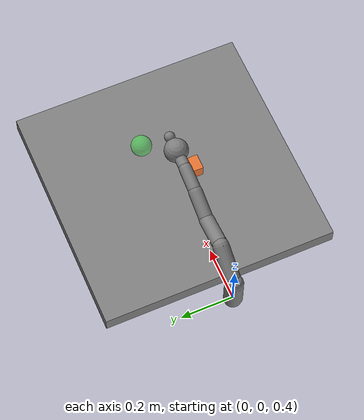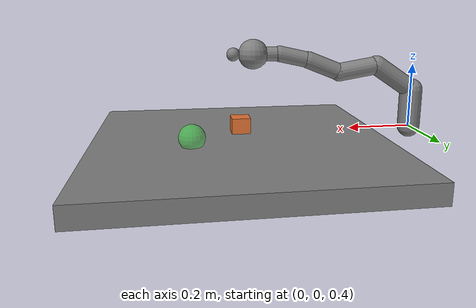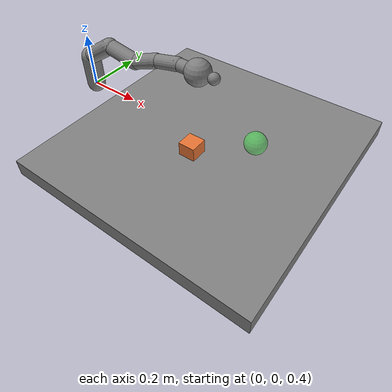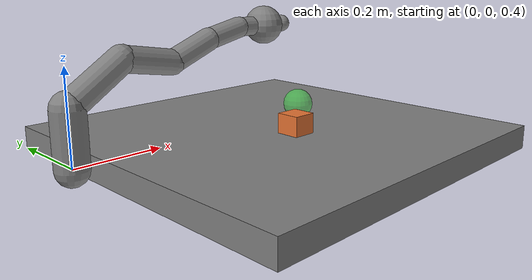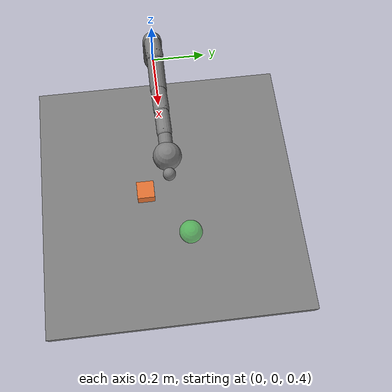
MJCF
<mujoco model="physlab_franka_push">
  <compiler angle="radian"/>
  <option timestep="0.01" integrator="RK4" gravity="0 0 -9.81"/>
  <default>
    <joint damping="0.08" armature="0.01"/>
    <geom friction="0.9 0.12 0.12"/>
  </default>
  <worldbody>
    <light pos="0 0 2"/>
    <geom name="table" type="box" pos="0.55 0 0.35" size="0.45 0.45 0.03"/>
    <body name="panda_link0" pos="0 0 0.40">
      <joint name="panda_joint1" type="hinge" axis="0 0 1" range="-2.9 2.9" limited="true"/>
      <geom type="capsule" fromto="0 0 0 0 0 0.12" size="0.035" mass="0.7"/>
      <body name="panda_link1" pos="0 0 0.12">
        <joint name="panda_joint2" type="hinge" axis="0 1 0" range="-1.8 1.8" limited="true"/>
        <geom type="capsule" fromto="0 0 0 0.12 0 0.08" size="0.03" mass="0.6"/>
        <body name="panda_link2" pos="0.12 0 0.08">
          <joint name="panda_joint3" type="hinge" axis="0 1 0" range="-2.8 2.8" limited="true"/>
          <geom type="capsule" fromto="0 0 0 0.12 0 -0.02" size="0.028" mass="0.5"/>
          <body name="panda_link3" pos="0.12 0 -0.02">
            <joint name="panda_joint4" type="hinge" axis="1 0 0" range="-2.9 0.0" limited="true"/>
            <geom type="capsule" fromto="0 0 0 0.10 0 0.04" size="0.026" mass="0.4"/>
            <body name="panda_link4" pos="0.10 0 0.04">
              <joint name="panda_joint5" type="hinge" axis="0 1 0" range="-2.9 2.9" limited="true"/>
              <geom type="capsule" fromto="0 0 0 0.09 0 0.02" size="0.024" mass="0.3"/>
              <body name="panda_link5" pos="0.09 0 0.02">
                <joint name="panda_joint6" type="hinge" axis="1 0 0" range="-0.1 3.7" limited="true"/>
                <geom type="capsule" fromto="0 0 0 0.08 0 0" size="0.022" mass="0.2"/>
                <body name="panda_hand" pos="0.08 0 0">
                  <joint name="panda_joint7" type="hinge" axis="0 1 0" range="-2.9 2.9" limited="true"/>
                  <geom name="hand_geom" type="sphere" size="0.045" mass="0.2"/>
                  <site name="gripper_site" pos="0.06 0 0" size="0.02"/>
                </body>
              </body>
            </body>
          </body>
        </body>
      </body>
    </body>
    <body name="cube" pos="0.54 -0.08 0.405">
      <freejoint name="cube_free"/>
      <geom name="cube_geom" type="box" size="0.03 0.03 0.025" mass="0.08" rgba="0.9 0.45 0.2 1"/>
    </body>
    <body name="target_mocap" mocap="true" pos="0.70 0.06 0.405">
      <site name="target_site" type="sphere" size="0.04" rgba="0.2 1 0.25 0.45"/>
    </body>
  </worldbody>
  <actuator>
    <motor name="act1" joint="panda_joint1" ctrllimited="true" ctrlrange="-1 1" gear="12"/>
    <motor name="act2" joint="panda_joint2" ctrllimited="true" ctrlrange="-1 1" gear="12"/>
    <motor name="act3" joint="panda_joint3" ctrllimited="true" ctrlrange="-1 1" gear="12"/>
    <motor name="act4" joint="panda_joint4" ctrllimited="true" ctrlrange="-1 1" gear="12"/>
    <motor name="act5" joint="panda_joint5" ctrllimited="true" ctrlrange="-1 1" gear="12"/>
    <motor name="act6" joint="panda_joint6" ctrllimited="true" ctrlrange="-1 1" gear="12"/>
    <motor name="act7" joint="panda_joint7" ctrllimited="true" ctrlrange="-1 1" gear="12"/>
  </actuator>
</mujoco>
